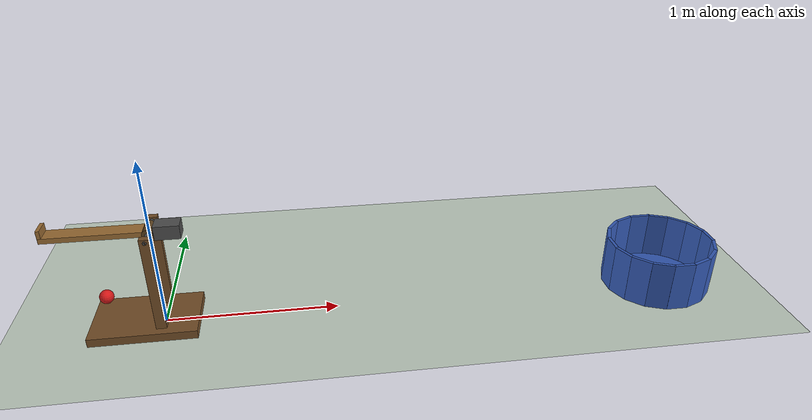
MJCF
<mujoco model="catapult_bucket">
  <option timestep="0.002" gravity="0 0 -9.81"/>
  <visual>
    <global offwidth="1280" offheight="720"/>
  </visual>
  <worldbody>
    <light name="sun" pos="1.5 -2 4" dir="0 0.4 -1" diffuse="0.9 0.9 0.9"/>
    <geom name="floor" type="plane" size="6 3 0.1" pos="1.5 0 0" rgba="0.75 0.8 0.75 1"/>

    <!-- catapult frame (static) -->
    <geom name="catapult_base" type="box" pos="-0.1 0 0.025" size="0.3 0.2 0.025" rgba="0.45 0.3 0.15 1"/>
    <geom name="catapult_post_left" type="box" pos="0 0.13 0.335" size="0.03 0.02 0.285" rgba="0.45 0.3 0.15 1"/>
    <geom name="catapult_post_right" type="box" pos="0 -0.13 0.335" size="0.03 0.02 0.285" rgba="0.45 0.3 0.15 1"/>
    <geom name="catapult_axle" type="cylinder" fromto="0 -0.15 0.6 0 0.15 0.6" size="0.012" contype="0" conaffinity="0" rgba="0.3 0.3 0.3 1"/>

    <!-- throwing arm: pivot at z=0.6, arm points along -x in its own frame, cup at radius 0.5 -->
    <body name="catapult_arm" pos="0 0 0.6">
      <joint name="catapult_pivot" type="hinge" axis="0 1 0" limited="true" range="-70 45" solreflimit="0.005 1"/>
      <inertial pos="0 0 0" mass="5" diaginertia="0.5 0.5 0.5"/>
      <geom name="catapult_hub" type="cylinder" fromto="0 -0.06 0 0 0.06 0" size="0.03" rgba="0.35 0.25 0.12 1"/>
      <geom name="catapult_beam" type="box" pos="-0.27 0 0" size="0.29 0.05 0.015" solref="0.005 1" rgba="0.6 0.42 0.2 1"/>
      <geom name="catapult_lip" type="box" pos="-0.55 0 0.0375" size="0.01 0.05 0.0225" priority="1" condim="1" solref="0.005 1" rgba="0.6 0.42 0.2 1"/>
      <geom name="catapult_counterweight" type="box" pos="0.1 0 0" size="0.07 0.05 0.04" rgba="0.3 0.3 0.3 1"/>
    </body>

    <!-- ball resting in the cup (arm at -60 deg) -->
    <body name="ball" pos="-0.297631 0 0.194487">
      <freejoint/>
      <geom name="ball" type="sphere" size="0.04" mass="0.1" solref="0.005 1" rgba="0.85 0.1 0.1 1"/>
    </body>

    <!-- bucket: inner radius 0.30, height 0.30, centred 3 m downrange -->
    <body name="bucket" pos="3 0 0">
      <geom name="bucket_bottom" type="cylinder" pos="0 0 0.01" size="0.30 0.01" rgba="0.2 0.35 0.7 1"/>
      <geom name="bucket_wall_00" type="box" pos="0.31 0 0.15" euler="0 0 0" size="0.01 0.064 0.15" rgba="0.2 0.35 0.7 1"/>
      <geom name="bucket_wall_01" type="box" pos="0.28640 0.11863 0.15" euler="0 0 22.5" size="0.01 0.064 0.15" rgba="0.2 0.35 0.7 1"/>
      <geom name="bucket_wall_02" type="box" pos="0.21920 0.21920 0.15" euler="0 0 45" size="0.01 0.064 0.15" rgba="0.2 0.35 0.7 1"/>
      <geom name="bucket_wall_03" type="box" pos="0.11863 0.28640 0.15" euler="0 0 67.5" size="0.01 0.064 0.15" rgba="0.2 0.35 0.7 1"/>
      <geom name="bucket_wall_04" type="box" pos="0 0.31 0.15" euler="0 0 90" size="0.01 0.064 0.15" rgba="0.2 0.35 0.7 1"/>
      <geom name="bucket_wall_05" type="box" pos="-0.11863 0.28640 0.15" euler="0 0 112.5" size="0.01 0.064 0.15" rgba="0.2 0.35 0.7 1"/>
      <geom name="bucket_wall_06" type="box" pos="-0.21920 0.21920 0.15" euler="0 0 135" size="0.01 0.064 0.15" rgba="0.2 0.35 0.7 1"/>
      <geom name="bucket_wall_07" type="box" pos="-0.28640 0.11863 0.15" euler="0 0 157.5" size="0.01 0.064 0.15" rgba="0.2 0.35 0.7 1"/>
      <geom name="bucket_wall_08" type="box" pos="-0.31 0 0.15" euler="0 0 180" size="0.01 0.064 0.15" rgba="0.2 0.35 0.7 1"/>
      <geom name="bucket_wall_09" type="box" pos="-0.28640 -0.11863 0.15" euler="0 0 202.5" size="0.01 0.064 0.15" rgba="0.2 0.35 0.7 1"/>
      <geom name="bucket_wall_10" type="box" pos="-0.21920 -0.21920 0.15" euler="0 0 225" size="0.01 0.064 0.15" rgba="0.2 0.35 0.7 1"/>
      <geom name="bucket_wall_11" type="box" pos="-0.11863 -0.28640 0.15" euler="0 0 247.5" size="0.01 0.064 0.15" rgba="0.2 0.35 0.7 1"/>
      <geom name="bucket_wall_12" type="box" pos="0 -0.31 0.15" euler="0 0 270" size="0.01 0.064 0.15" rgba="0.2 0.35 0.7 1"/>
      <geom name="bucket_wall_13" type="box" pos="0.11863 -0.28640 0.15" euler="0 0 292.5" size="0.01 0.064 0.15" rgba="0.2 0.35 0.7 1"/>
      <geom name="bucket_wall_14" type="box" pos="0.21920 -0.21920 0.15" euler="0 0 315" size="0.01 0.064 0.15" rgba="0.2 0.35 0.7 1"/>
      <geom name="bucket_wall_15" type="box" pos="0.28640 -0.11863 0.15" euler="0 0 337.5" size="0.01 0.064 0.15" rgba="0.2 0.35 0.7 1"/>
    </body>
  </worldbody>

  <actuator>
    <velocity name="catapult_motor" joint="catapult_pivot" kv="13" ctrlrange="0 20"/>
  </actuator>

  <keyframe>
    <key name="start" qpos="-1.047198 -0.297631 0 0.194487 1 0 0 0" qvel="0 0 0 0 0 0 0" ctrl="10.15"/>
  </keyframe>
</mujoco>
